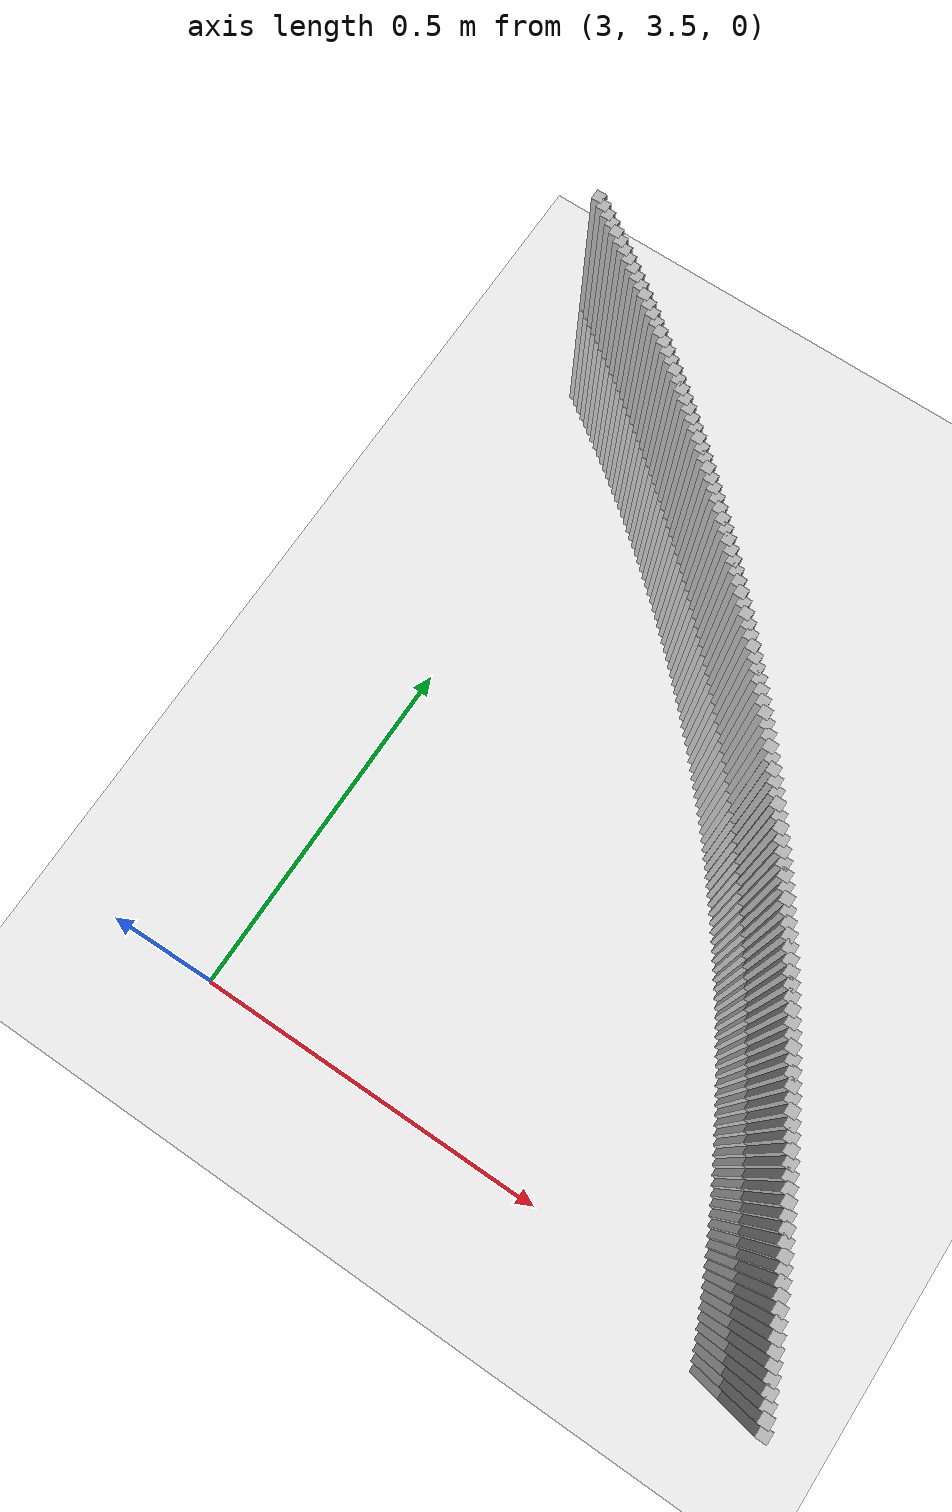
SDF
<sdf version="1.6">
 <world name="base">
  <include><uri>model://sun</uri></include>
  <include><uri>model://ground_plane</uri></include>
  <model name="k404">
   <link name="112_link">
    <collision name="collision_112">
     <pose>2.86540944822022 4.594196036361199 0 0 -0 0</pose>
     <geometry><box><size>0.015 0.015 0.50</size></box></geometry>
    </collision>
    <visual name="visual_112">
     <pose>2.86540944822022 4.594196036361199 0 0 -0 0</pose>
     <geometry><box><size>0.015 0.015 0.50</size></box></geometry>
    </visual>
   </link>
   <link name="113_link">
    <collision name="collision_113">
     <pose>2.8770227397174244 4.586578149579142 0 0 -0 0</pose>
     <geometry><box><size>0.015 0.015 0.50</size></box></geometry>
    </collision>
    <visual name="visual_113">
     <pose>2.8770227397174244 4.586578149579142 0 0 -0 0</pose>
     <geometry><box><size>0.015 0.015 0.50</size></box></geometry>
    </visual>
   </link>
   <link name="114_link">
    <collision name="collision_114">
     <pose>2.888593530622098 4.578895862402553 0 0 -0 0</pose>
     <geometry><box><size>0.015 0.015 0.50</size></box></geometry>
    </collision>
    <visual name="visual_114">
     <pose>2.888593530622098 4.578895862402553 0 0 -0 0</pose>
     <geometry><box><size>0.015 0.015 0.50</size></box></geometry>
    </visual>
   </link>
   <link name="115_link">
    <collision name="collision_115">
     <pose>2.900121463811983 4.571149411938451 0 0 -0 0</pose>
     <geometry><box><size>0.015 0.015 0.50</size></box></geometry>
    </collision>
    <visual name="visual_115">
     <pose>2.900121463811983 4.571149411938451 0 0 -0 0</pose>
     <geometry><box><size>0.015 0.015 0.50</size></box></geometry>
    </visual>
   </link>
   <link name="116_link">
    <collision name="collision_116">
     <pose>2.9116061834875886 4.563339037274195 0 0 -0 0</pose>
     <geometry><box><size>0.015 0.015 0.50</size></box></geometry>
    </collision>
    <visual name="visual_116">
     <pose>2.9116061834875886 4.563339037274195 0 0 -0 0</pose>
     <geometry><box><size>0.015 0.015 0.50</size></box></geometry>
    </visual>
   </link>
   <link name="117_link">
    <collision name="collision_117">
     <pose>2.9230473351831683 4.555464979470116 0 0 -0 0</pose>
     <geometry><box><size>0.015 0.015 0.50</size></box></geometry>
    </collision>
    <visual name="visual_117">
     <pose>2.9230473351831683 4.555464979470116 0 0 -0 0</pose>
     <geometry><box><size>0.015 0.015 0.50</size></box></geometry>
    </visual>
   </link>
   <link name="118_link">
    <collision name="collision_118">
     <pose>2.934444565777665 4.547527481552061 0 0 -0 0</pose>
     <geometry><box><size>0.015 0.015 0.50</size></box></geometry>
    </collision>
    <visual name="visual_118">
     <pose>2.934444565777665 4.547527481552061 0 0 -0 0</pose>
     <geometry><box><size>0.015 0.015 0.50</size></box></geometry>
    </visual>
   </link>
   <link name="119_link">
    <collision name="collision_119">
     <pose>2.9457975235056075 4.539526788503904 0 0 -0 0</pose>
     <geometry><box><size>0.015 0.015 0.50</size></box></geometry>
    </collision>
    <visual name="visual_119">
     <pose>2.9457975235056075 4.539526788503904 0 0 -0 0</pose>
     <geometry><box><size>0.015 0.015 0.50</size></box></geometry>
    </visual>
   </link>
   <link name="120_link">
    <collision name="collision_120">
     <pose>2.9571058579679668 4.5314631472599824 0 0 -0 0</pose>
     <geometry><box><size>0.015 0.015 0.50</size></box></geometry>
    </collision>
    <visual name="visual_120">
     <pose>2.9571058579679668 4.5314631472599824 0 0 -0 0</pose>
     <geometry><box><size>0.015 0.015 0.50</size></box></geometry>
    </visual>
   </link>
   <link name="121_link">
    <collision name="collision_121">
     <pose>2.9683692201429723 4.523336806697472 0 0 -0 0</pose>
     <geometry><box><size>0.015 0.015 0.50</size></box></geometry>
    </collision>
    <visual name="visual_121">
     <pose>2.9683692201429723 4.523336806697472 0 0 -0 0</pose>
     <geometry><box><size>0.015 0.015 0.50</size></box></geometry>
    </visual>
   </link>
   <link name="122_link">
    <collision name="collision_122">
     <pose>2.9795872623968824 4.5151480176287055 0 0 -0 0</pose>
     <geometry><box><size>0.015 0.015 0.50</size></box></geometry>
    </collision>
    <visual name="visual_122">
     <pose>2.9795872623968824 4.5151480176287055 0 0 -0 0</pose>
     <geometry><box><size>0.015 0.015 0.50</size></box></geometry>
    </visual>
   </link>
   <link name="123_link">
    <collision name="collision_123">
     <pose>2.990759638494716 4.506897032793438 0 0 -0 0</pose>
     <geometry><box><size>0.015 0.015 0.50</size></box></geometry>
    </collision>
    <visual name="visual_123">
     <pose>2.990759638494716 4.506897032793438 0 0 -0 0</pose>
     <geometry><box><size>0.015 0.015 0.50</size></box></geometry>
    </visual>
   </link>
   <link name="124_link">
    <collision name="collision_124">
     <pose>3.001886003610937 4.498584106851039 0 0 -0 0</pose>
     <geometry><box><size>0.015 0.015 0.50</size></box></geometry>
    </collision>
    <visual name="visual_124">
     <pose>3.001886003610937 4.498584106851039 0 0 -0 0</pose>
     <geometry><box><size>0.015 0.015 0.50</size></box></geometry>
    </visual>
   </link>
   <link name="125_link">
    <collision name="collision_125">
     <pose>3.012966014340099 4.490209496372639 0 0 -0 0</pose>
     <geometry><box><size>0.015 0.015 0.50</size></box></geometry>
    </collision>
    <visual name="visual_125">
     <pose>3.012966014340099 4.490209496372639 0 0 -0 0</pose>
     <geometry><box><size>0.015 0.015 0.50</size></box></geometry>
    </visual>
   </link>
   <link name="126_link">
    <collision name="collision_126">
     <pose>3.0239993287074407 4.481773459833205 0 0 -0 0</pose>
     <geometry><box><size>0.015 0.015 0.50</size></box></geometry>
    </collision>
    <visual name="visual_126">
     <pose>3.0239993287074407 4.481773459833205 0 0 -0 0</pose>
     <geometry><box><size>0.015 0.015 0.50</size></box></geometry>
    </visual>
   </link>
   <link name="127_link">
    <collision name="collision_127">
     <pose>3.0349856061794434 4.473276257603564 0 0 -0 0</pose>
     <geometry><box><size>0.015 0.015 0.50</size></box></geometry>
    </collision>
    <visual name="visual_127">
     <pose>3.0349856061794434 4.473276257603564 0 0 -0 0</pose>
     <geometry><box><size>0.015 0.015 0.50</size></box></geometry>
    </visual>
   </link>
   <link name="128_link">
    <collision name="collision_128">
     <pose>3.0459245076743424 4.46471815194237 0 0 -0 0</pose>
     <geometry><box><size>0.015 0.015 0.50</size></box></geometry>
    </collision>
    <visual name="visual_128">
     <pose>3.0459245076743424 4.46471815194237 0 0 -0 0</pose>
     <geometry><box><size>0.015 0.015 0.50</size></box></geometry>
    </visual>
   </link>
   <link name="129_link">
    <collision name="collision_129">
     <pose>3.056815695572589 4.456099406988008 0 0 -0 0</pose>
     <geometry><box><size>0.015 0.015 0.50</size></box></geometry>
    </collision>
    <visual name="visual_129">
     <pose>3.056815695572589 4.456099406988008 0 0 -0 0</pose>
     <geometry><box><size>0.015 0.015 0.50</size></box></geometry>
    </visual>
   </link>
   <link name="130_link">
    <collision name="collision_130">
     <pose>3.0676588337272737 4.44742028875044 0 0 -0 0</pose>
     <geometry><box><size>0.015 0.015 0.50</size></box></geometry>
    </collision>
    <visual name="visual_130">
     <pose>3.0676588337272737 4.44742028875044 0 0 -0 0</pose>
     <geometry><box><size>0.015 0.015 0.50</size></box></geometry>
    </visual>
   </link>
   <link name="131_link">
    <collision name="collision_131">
     <pose>3.0784535874744985 4.438681065102996 0 0 -0 0</pose>
     <geometry><box><size>0.015 0.015 0.50</size></box></geometry>
    </collision>
    <visual name="visual_131">
     <pose>3.0784535874744985 4.438681065102996 0 0 -0 0</pose>
     <geometry><box><size>0.015 0.015 0.50</size></box></geometry>
    </visual>
   </link>
   <link name="132_link">
    <collision name="collision_132">
     <pose>3.089199623643709 4.429882005774108 0 0 -0 0</pose>
     <geometry><box><size>0.015 0.015 0.50</size></box></geometry>
    </collision>
    <visual name="visual_132">
     <pose>3.089199623643709 4.429882005774108 0 0 -0 0</pose>
     <geometry><box><size>0.015 0.015 0.50</size></box></geometry>
    </visual>
   </link>
   <link name="133_link">
    <collision name="collision_133">
     <pose>3.099896610567974 4.4210233823389835 0 0 -0 0</pose>
     <geometry><box><size>0.015 0.015 0.50</size></box></geometry>
    </collision>
    <visual name="visual_133">
     <pose>3.099896610567974 4.4210233823389835 0 0 -0 0</pose>
     <geometry><box><size>0.015 0.015 0.50</size></box></geometry>
    </visual>
   </link>
   <link name="134_link">
    <collision name="collision_134">
     <pose>3.1105442180942275 4.412105468211221 0 0 -0 0</pose>
     <geometry><box><size>0.015 0.015 0.50</size></box></geometry>
    </collision>
    <visual name="visual_134">
     <pose>3.1105442180942275 4.412105468211221 0 0 -0 0</pose>
     <geometry><box><size>0.015 0.015 0.50</size></box></geometry>
    </visual>
   </link>
   <link name="135_link">
    <collision name="collision_135">
     <pose>3.1211421175934513 4.403128538634377 0 0 -0 0</pose>
     <geometry><box><size>0.015 0.015 0.50</size></box></geometry>
    </collision>
    <visual name="visual_135">
     <pose>3.1211421175934513 4.403128538634377 0 0 -0 0</pose>
     <geometry><box><size>0.015 0.015 0.50</size></box></geometry>
    </visual>
   </link>
   <link name="136_link">
    <collision name="collision_136">
     <pose>3.1316899819708235 4.394092870673466 0 0 -0 0</pose>
     <geometry><box><size>0.015 0.015 0.50</size></box></geometry>
    </collision>
    <visual name="visual_136">
     <pose>3.1316899819708235 4.394092870673466 0 0 -0 0</pose>
     <geometry><box><size>0.015 0.015 0.50</size></box></geometry>
    </visual>
   </link>
   <link name="137_link">
    <collision name="collision_137">
     <pose>3.142187485675812 4.384998743206413 0 0 -0 0</pose>
     <geometry><box><size>0.015 0.015 0.50</size></box></geometry>
    </collision>
    <visual name="visual_137">
     <pose>3.142187485675812 4.384998743206413 0 0 -0 0</pose>
     <geometry><box><size>0.015 0.015 0.50</size></box></geometry>
    </visual>
   </link>
   <link name="138_link">
    <collision name="collision_138">
     <pose>3.152634304712221 4.37584643691544 0 0 -0 0</pose>
     <geometry><box><size>0.015 0.015 0.50</size></box></geometry>
    </collision>
    <visual name="visual_138">
     <pose>3.152634304712221 4.37584643691544 0 0 -0 0</pose>
     <geometry><box><size>0.015 0.015 0.50</size></box></geometry>
    </visual>
   </link>
   <link name="139_link">
    <collision name="collision_139">
     <pose>3.1630301166481947 4.3666362342784115 0 0 -0 0</pose>
     <geometry><box><size>0.015 0.015 0.50</size></box></geometry>
    </collision>
    <visual name="visual_139">
     <pose>3.1630301166481947 4.3666362342784115 0 0 -0 0</pose>
     <geometry><box><size>0.015 0.015 0.50</size></box></geometry>
    </visual>
   </link>
   <link name="140_link">
    <collision name="collision_140">
     <pose>3.1733746006261656 4.35736841956011 0 0 -0 0</pose>
     <geometry><box><size>0.015 0.015 0.50</size></box></geometry>
    </collision>
    <visual name="visual_140">
     <pose>3.1733746006261656 4.35736841956011 0 0 -0 0</pose>
     <geometry><box><size>0.015 0.015 0.50</size></box></geometry>
    </visual>
   </link>
   <link name="141_link">
    <collision name="collision_141">
     <pose>3.1836674373727565 4.348043278803463 0 0 -0 0</pose>
     <geometry><box><size>0.015 0.015 0.50</size></box></geometry>
    </collision>
    <visual name="visual_141">
     <pose>3.1836674373727565 4.348043278803463 0 0 -0 0</pose>
     <geometry><box><size>0.015 0.015 0.50</size></box></geometry>
    </visual>
   </link>
   <link name="142_link">
    <collision name="collision_142">
     <pose>3.1939083092086396 4.338661099820717 0 0 -0 0</pose>
     <geometry><box><size>0.015 0.015 0.50</size></box></geometry>
    </collision>
    <visual name="visual_142">
     <pose>3.1939083092086396 4.338661099820717 0 0 -0 0</pose>
     <geometry><box><size>0.015 0.015 0.50</size></box></geometry>
    </visual>
   </link>
   <link name="143_link">
    <collision name="collision_143">
     <pose>3.2040969000583353 4.3292221721845525 0 0 -0 0</pose>
     <geometry><box><size>0.015 0.015 0.50</size></box></geometry>
    </collision>
    <visual name="visual_143">
     <pose>3.2040969000583353 4.3292221721845525 0 0 -0 0</pose>
     <geometry><box><size>0.015 0.015 0.50</size></box></geometry>
    </visual>
   </link>
   <link name="144_link">
    <collision name="collision_144">
     <pose>3.214232895459973 4.319726787219147 0 0 -0 0</pose>
     <geometry><box><size>0.015 0.015 0.50</size></box></geometry>
    </collision>
    <visual name="visual_144">
     <pose>3.214232895459973 4.319726787219147 0 0 -0 0</pose>
     <geometry><box><size>0.015 0.015 0.50</size></box></geometry>
    </visual>
   </link>
   <link name="145_link">
    <collision name="collision_145">
     <pose>3.224315982574992 4.310175237991184 0 0 -0 0</pose>
     <geometry><box><size>0.015 0.015 0.50</size></box></geometry>
    </collision>
    <visual name="visual_145">
     <pose>3.224315982574992 4.310175237991184 0 0 -0 0</pose>
     <geometry><box><size>0.015 0.015 0.50</size></box></geometry>
    </visual>
   </link>
   <link name="146_link">
    <collision name="collision_146">
     <pose>3.234345850197801 4.300567819300808 0 0 -0 0</pose>
     <geometry><box><size>0.015 0.015 0.50</size></box></geometry>
    </collision>
    <visual name="visual_146">
     <pose>3.234345850197801 4.300567819300808 0 0 -0 0</pose>
     <geometry><box><size>0.015 0.015 0.50</size></box></geometry>
    </visual>
   </link>
   <link name="147_link">
    <collision name="collision_147">
     <pose>3.2443221887653806 4.290904827672524 0 0 -0 0</pose>
     <geometry><box><size>0.015 0.015 0.50</size></box></geometry>
    </collision>
    <visual name="visual_147">
     <pose>3.2443221887653806 4.290904827672524 0 0 -0 0</pose>
     <geometry><box><size>0.015 0.015 0.50</size></box></geometry>
    </visual>
   </link>
   <link name="148_link">
    <collision name="collision_148">
     <pose>3.2542446903668383 4.281186561346047 0 0 -0 0</pose>
     <geometry><box><size>0.015 0.015 0.50</size></box></geometry>
    </collision>
    <visual name="visual_148">
     <pose>3.2542446903668383 4.281186561346047 0 0 -0 0</pose>
     <geometry><box><size>0.015 0.015 0.50</size></box></geometry>
    </visual>
   </link>
   <link name="149_link">
    <collision name="collision_149">
     <pose>3.2641130487529124 4.271413320267098 0 0 -0 0</pose>
     <geometry><box><size>0.015 0.015 0.50</size></box></geometry>
    </collision>
    <visual name="visual_149">
     <pose>3.2641130487529124 4.271413320267098 0 0 -0 0</pose>
     <geometry><box><size>0.015 0.015 0.50</size></box></geometry>
    </visual>
   </link>
   <link name="150_link">
    <collision name="collision_150">
     <pose>3.273926959345424 4.261585406078144 0 0 -0 0</pose>
     <geometry><box><size>0.015 0.015 0.50</size></box></geometry>
    </collision>
    <visual name="visual_150">
     <pose>3.273926959345424 4.261585406078144 0 0 -0 0</pose>
     <geometry><box><size>0.015 0.015 0.50</size></box></geometry>
    </visual>
   </link>
   <link name="151_link">
    <collision name="collision_151">
     <pose>3.283686119246677 4.251703122109089 0 0 -0 0</pose>
     <geometry><box><size>0.015 0.015 0.50</size></box></geometry>
    </collision>
    <visual name="visual_151">
     <pose>3.283686119246677 4.251703122109089 0 0 -0 0</pose>
     <geometry><box><size>0.015 0.015 0.50</size></box></geometry>
    </visual>
   </link>
   <link name="152_link">
    <collision name="collision_152">
     <pose>3.293390227248807 4.241766773367914 0 0 -0 0</pose>
     <geometry><box><size>0.015 0.015 0.50</size></box></geometry>
    </collision>
    <visual name="visual_152">
     <pose>3.293390227248807 4.241766773367914 0 0 -0 0</pose>
     <geometry><box><size>0.015 0.015 0.50</size></box></geometry>
    </visual>
   </link>
   <link name="153_link">
    <collision name="collision_153">
     <pose>3.303038983843078 4.2317766665312595 0 0 -0 0</pose>
     <geometry><box><size>0.015 0.015 0.50</size></box></geometry>
    </collision>
    <visual name="visual_153">
     <pose>3.303038983843078 4.2317766665312595 0 0 -0 0</pose>
     <geometry><box><size>0.015 0.015 0.50</size></box></geometry>
    </visual>
   </link>
   <link name="154_link">
    <collision name="collision_154">
     <pose>3.312632091229127 4.221733109934964 0 0 -0 0</pose>
     <geometry><box><size>0.015 0.015 0.50</size></box></geometry>
    </collision>
    <visual name="visual_154">
     <pose>3.312632091229127 4.221733109934964 0 0 -0 0</pose>
     <geometry><box><size>0.015 0.015 0.50</size></box></geometry>
    </visual>
   </link>
   <link name="155_link">
    <collision name="collision_155">
     <pose>3.3221692533241542 4.211636413564544 0 0 -0 0</pose>
     <geometry><box><size>0.015 0.015 0.50</size></box></geometry>
    </collision>
    <visual name="visual_155">
     <pose>3.3221692533241542 4.211636413564544 0 0 -0 0</pose>
     <geometry><box><size>0.015 0.015 0.50</size></box></geometry>
    </visual>
   </link>
   <link name="156_link">
    <collision name="collision_156">
     <pose>3.3316501757720616 4.20148688904563 0 0 -0 0</pose>
     <geometry><box><size>0.015 0.015 0.50</size></box></geometry>
    </collision>
    <visual name="visual_156">
     <pose>3.3316501757720616 4.20148688904563 0 0 -0 0</pose>
     <geometry><box><size>0.015 0.015 0.50</size></box></geometry>
    </visual>
   </link>
   <link name="157_link">
    <collision name="collision_157">
     <pose>3.341074565952538 4.191284849634346 0 0 -0 0</pose>
     <geometry><box><size>0.015 0.015 0.50</size></box></geometry>
    </collision>
    <visual name="visual_157">
     <pose>3.341074565952538 4.191284849634346 0 0 -0 0</pose>
     <geometry><box><size>0.015 0.015 0.50</size></box></geometry>
    </visual>
   </link>
   <link name="158_link">
    <collision name="collision_158">
     <pose>3.350442132990093 4.1810306102076416 0 0 -0 0</pose>
     <geometry><box><size>0.015 0.015 0.50</size></box></geometry>
    </collision>
    <visual name="visual_158">
     <pose>3.350442132990093 4.1810306102076416 0 0 -0 0</pose>
     <geometry><box><size>0.015 0.015 0.50</size></box></geometry>
    </visual>
   </link>
   <link name="159_link">
    <collision name="collision_159">
     <pose>3.359752587763029 4.170724487253574 0 0 -0 0</pose>
     <geometry><box><size>0.015 0.015 0.50</size></box></geometry>
    </collision>
    <visual name="visual_159">
     <pose>3.359752587763029 4.170724487253574 0 0 -0 0</pose>
     <geometry><box><size>0.015 0.015 0.50</size></box></geometry>
    </visual>
   </link>
   <link name="160_link">
    <collision name="collision_160">
     <pose>3.369005642912371 4.1603667988615385 0 0 -0 0</pose>
     <geometry><box><size>0.015 0.015 0.50</size></box></geometry>
    </collision>
    <visual name="visual_160">
     <pose>3.369005642912371 4.1603667988615385 0 0 -0 0</pose>
     <geometry><box><size>0.015 0.015 0.50</size></box></geometry>
    </visual>
   </link>
   <link name="161_link">
    <collision name="collision_161">
     <pose>3.378201012850732 4.149957864712455 0 0 -0 0</pose>
     <geometry><box><size>0.015 0.015 0.50</size></box></geometry>
    </collision>
    <visual name="visual_161">
     <pose>3.378201012850732 4.149957864712455 0 0 -0 0</pose>
     <geometry><box><size>0.015 0.015 0.50</size></box></geometry>
    </visual>
   </link>
   <link name="162_link">
    <collision name="collision_162">
     <pose>3.3873384137711264 4.139498006068897 0 0 -0 0</pose>
     <geometry><box><size>0.015 0.015 0.50</size></box></geometry>
    </collision>
    <visual name="visual_162">
     <pose>3.3873384137711264 4.139498006068897 0 0 -0 0</pose>
     <geometry><box><size>0.015 0.015 0.50</size></box></geometry>
    </visual>
   </link>
   <link name="163_link">
    <collision name="collision_163">
     <pose>3.396417563655734 4.128987545765176 0 0 -0 0</pose>
     <geometry><box><size>0.015 0.015 0.50</size></box></geometry>
    </collision>
    <visual name="visual_163">
     <pose>3.396417563655734 4.128987545765176 0 0 -0 0</pose>
     <geometry><box><size>0.015 0.015 0.50</size></box></geometry>
    </visual>
   </link>
   <link name="164_link">
    <collision name="collision_164">
     <pose>3.405438182284599 4.1184268081973805 0 0 -0 0</pose>
     <geometry><box><size>0.015 0.015 0.50</size></box></geometry>
    </collision>
    <visual name="visual_164">
     <pose>3.405438182284599 4.1184268081973805 0 0 -0 0</pose>
     <geometry><box><size>0.015 0.015 0.50</size></box></geometry>
    </visual>
   </link>
   <link name="165_link">
    <collision name="collision_165">
     <pose>3.4143999912442835 4.107816119313364 0 0 -0 0</pose>
     <geometry><box><size>0.015 0.015 0.50</size></box></geometry>
    </collision>
    <visual name="visual_165">
     <pose>3.4143999912442835 4.107816119313364 0 0 -0 0</pose>
     <geometry><box><size>0.015 0.015 0.50</size></box></geometry>
    </visual>
   </link>
   <link name="166_link">
    <collision name="collision_166">
     <pose>3.4233027139364554 4.097155806602682 0 0 -0 0</pose>
     <geometry><box><size>0.015 0.015 0.50</size></box></geometry>
    </collision>
    <visual name="visual_166">
     <pose>3.4233027139364554 4.097155806602682 0 0 -0 0</pose>
     <geometry><box><size>0.015 0.015 0.50</size></box></geometry>
    </visual>
   </link>
   <link name="167_link">
    <collision name="collision_167">
     <pose>3.4321460755864313 4.086446199086485 0 0 -0 0</pose>
     <geometry><box><size>0.015 0.015 0.50</size></box></geometry>
    </collision>
    <visual name="visual_167">
     <pose>3.4321460755864313 4.086446199086485 0 0 -0 0</pose>
     <geometry><box><size>0.015 0.015 0.50</size></box></geometry>
    </visual>
   </link>
   <link name="168_link">
    <collision name="collision_168">
     <pose>3.440929803251651 4.075687627307363 0 0 -0 0</pose>
     <geometry><box><size>0.015 0.015 0.50</size></box></geometry>
    </collision>
    <visual name="visual_168">
     <pose>3.440929803251651 4.075687627307363 0 0 -0 0</pose>
     <geometry><box><size>0.015 0.015 0.50</size></box></geometry>
    </visual>
   </link>
   <link name="169_link">
    <collision name="collision_169">
     <pose>3.4496536258301074 4.064880423319148 0 0 -0 0</pose>
     <geometry><box><size>0.015 0.015 0.50</size></box></geometry>
    </collision>
    <visual name="visual_169">
     <pose>3.4496536258301074 4.064880423319148 0 0 -0 0</pose>
     <geometry><box><size>0.015 0.015 0.50</size></box></geometry>
    </visual>
   </link>
   <link name="170_link">
    <collision name="collision_170">
     <pose>3.4583172740687083 4.054024920676661 0 0 -0 0</pose>
     <geometry><box><size>0.015 0.015 0.50</size></box></geometry>
    </collision>
    <visual name="visual_170">
     <pose>3.4583172740687083 4.054024920676661 0 0 -0 0</pose>
     <geometry><box><size>0.015 0.015 0.50</size></box></geometry>
    </visual>
   </link>
   <link name="171_link">
    <collision name="collision_171">
     <pose>3.4669204805715923 4.0431214544254175 0 0 -0 0</pose>
     <geometry><box><size>0.015 0.015 0.50</size></box></geometry>
    </collision>
    <visual name="visual_171">
     <pose>3.4669204805715923 4.0431214544254175 0 0 -0 0</pose>
     <geometry><box><size>0.015 0.015 0.50</size></box></geometry>
    </visual>
   </link>
   <link name="172_link">
    <collision name="collision_172">
     <pose>3.475462979808376 4.032170361091289 0 0 -0 0</pose>
     <geometry><box><size>0.015 0.015 0.50</size></box></geometry>
    </collision>
    <visual name="visual_172">
     <pose>3.475462979808376 4.032170361091289 0 0 -0 0</pose>
     <geometry><box><size>0.015 0.015 0.50</size></box></geometry>
    </visual>
   </link>
   <link name="173_link">
    <collision name="collision_173">
     <pose>3.483944508122355 4.021171978670113 0 0 -0 0</pose>
     <geometry><box><size>0.015 0.015 0.50</size></box></geometry>
    </collision>
    <visual name="visual_173">
     <pose>3.483944508122355 4.021171978670113 0 0 -0 0</pose>
     <geometry><box><size>0.015 0.015 0.50</size></box></geometry>
    </visual>
   </link>
   <link name="174_link">
    <collision name="collision_174">
     <pose>3.492364803738637 4.010126646617264 0 0 -0 0</pose>
     <geometry><box><size>0.015 0.015 0.50</size></box></geometry>
    </collision>
    <visual name="visual_174">
     <pose>3.492364803738637 4.010126646617264 0 0 -0 0</pose>
     <geometry><box><size>0.015 0.015 0.50</size></box></geometry>
    </visual>
   </link>
   <link name="175_link">
    <collision name="collision_175">
     <pose>3.5007236067722225 3.999034705837176 0 0 -0 0</pose>
     <geometry><box><size>0.015 0.015 0.50</size></box></geometry>
    </collision>
    <visual name="visual_175">
     <pose>3.5007236067722225 3.999034705837176 0 0 -0 0</pose>
     <geometry><box><size>0.015 0.015 0.50</size></box></geometry>
    </visual>
   </link>
   <link name="176_link">
    <collision name="collision_176">
     <pose>3.509020659236028 3.9878964986728196 0 0 -0 0</pose>
     <geometry><box><size>0.015 0.015 0.50</size></box></geometry>
    </collision>
    <visual name="visual_176">
     <pose>3.509020659236028 3.9878964986728196 0 0 -0 0</pose>
     <geometry><box><size>0.015 0.015 0.50</size></box></geometry>
    </visual>
   </link>
   <link name="177_link">
    <collision name="collision_177">
     <pose>3.5172557050488455 3.9767123688951367 0 0 -0 0</pose>
     <geometry><box><size>0.015 0.015 0.50</size></box></geometry>
    </collision>
    <visual name="visual_177">
     <pose>3.5172557050488455 3.9767123688951367 0 0 -0 0</pose>
     <geometry><box><size>0.015 0.015 0.50</size></box></geometry>
    </visual>
   </link>
   <link name="178_link">
    <collision name="collision_178">
     <pose>3.525428490043248 3.9654826616924295 0 0 -0 0</pose>
     <geometry><box><size>0.015 0.015 0.50</size></box></geometry>
    </collision>
    <visual name="visual_178">
     <pose>3.525428490043248 3.9654826616924295 0 0 -0 0</pose>
     <geometry><box><size>0.015 0.015 0.50</size></box></geometry>
    </visual>
   </link>
   <link name="179_link">
    <collision name="collision_179">
     <pose>3.533538761973434 3.954207723659709 0 0 -0 0</pose>
     <geometry><box><size>0.015 0.015 0.50</size></box></geometry>
    </collision>
    <visual name="visual_179">
     <pose>3.533538761973434 3.954207723659709 0 0 -0 0</pose>
     <geometry><box><size>0.015 0.015 0.50</size></box></geometry>
    </visual>
   </link>
   <link name="180_link">
    <collision name="collision_180">
     <pose>3.541586270523013 3.9428879027879935 0 0 -0 0</pose>
     <geometry><box><size>0.015 0.015 0.50</size></box></geometry>
    </collision>
    <visual name="visual_180">
     <pose>3.541586270523013 3.9428879027879935 0 0 -0 0</pose>
     <geometry><box><size>0.015 0.015 0.50</size></box></geometry>
    </visual>
   </link>
   <link name="181_link">
    <collision name="collision_181">
     <pose>3.54957076731273 3.9315235484535727 0 0 -0 0</pose>
     <geometry><box><size>0.015 0.015 0.50</size></box></geometry>
    </collision>
    <visual name="visual_181">
     <pose>3.54957076731273 3.9315235484535727 0 0 -0 0</pose>
     <geometry><box><size>0.015 0.015 0.50</size></box></geometry>
    </visual>
   </link>
   <link name="182_link">
    <collision name="collision_182">
     <pose>3.5574920059081316 3.9201150114072214 0 0 -0 0</pose>
     <geometry><box><size>0.015 0.015 0.50</size></box></geometry>
    </collision>
    <visual name="visual_182">
     <pose>3.5574920059081316 3.9201150114072214 0 0 -0 0</pose>
     <geometry><box><size>0.015 0.015 0.50</size></box></geometry>
    </visual>
   </link>
   <link name="183_link">
    <collision name="collision_183">
     <pose>3.5653497418271756 3.9086626437633747 0 0 -0 0</pose>
     <geometry><box><size>0.015 0.015 0.50</size></box></geometry>
    </collision>
    <visual name="visual_183">
     <pose>3.5653497418271756 3.9086626437633747 0 0 -0 0</pose>
     <geometry><box><size>0.015 0.015 0.50</size></box></geometry>
    </visual>
   </link>
   <link name="184_link">
    <collision name="collision_184">
     <pose>3.5731437325477713 3.89716679898926 0 0 -0 0</pose>
     <geometry><box><size>0.015 0.015 0.50</size></box></geometry>
    </collision>
    <visual name="visual_184">
     <pose>3.5731437325477713 3.89716679898926 0 0 -0 0</pose>
     <geometry><box><size>0.015 0.015 0.50</size></box></geometry>
    </visual>
   </link>
   <link name="185_link">
    <collision name="collision_185">
     <pose>3.580873737515268 3.8856278318939896 0 0 -0 0</pose>
     <geometry><box><size>0.015 0.015 0.50</size></box></geometry>
    </collision>
    <visual name="visual_185">
     <pose>3.580873737515268 3.8856278318939896 0 0 -0 0</pose>
     <geometry><box><size>0.015 0.015 0.50</size></box></geometry>
    </visual>
   </link>
   <link name="186_link">
    <collision name="collision_186">
     <pose>3.5885395181498803 3.8740460986176073 0 0 -0 0</pose>
     <geometry><box><size>0.015 0.015 0.50</size></box></geometry>
    </collision>
    <visual name="visual_186">
     <pose>3.5885395181498803 3.8740460986176073 0 0 -0 0</pose>
     <geometry><box><size>0.015 0.015 0.50</size></box></geometry>
    </visual>
   </link>
   <link name="187_link">
    <collision name="collision_187">
     <pose>3.5961408378540476 3.8624219566200964 0 0 -0 0</pose>
     <geometry><box><size>0.015 0.015 0.50</size></box></geometry>
    </collision>
    <visual name="visual_187">
     <pose>3.5961408378540476 3.8624219566200964 0 0 -0 0</pose>
     <geometry><box><size>0.015 0.015 0.50</size></box></geometry>
    </visual>
   </link>
   <link name="188_link">
    <collision name="collision_188">
     <pose>3.6036774620197414 3.8507557646703496 0 0 -0 0</pose>
     <geometry><box><size>0.015 0.015 0.50</size></box></geometry>
    </collision>
    <visual name="visual_188">
     <pose>3.6036774620197414 3.8507557646703496 0 0 -0 0</pose>
     <geometry><box><size>0.015 0.015 0.50</size></box></geometry>
    </visual>
   </link>
   <link name="189_link">
    <collision name="collision_189">
     <pose>3.6111491580357025 3.839047882835093 0 0 -0 0</pose>
     <geometry><box><size>0.015 0.015 0.50</size></box></geometry>
    </collision>
    <visual name="visual_189">
     <pose>3.6111491580357025 3.839047882835093 0 0 -0 0</pose>
     <geometry><box><size>0.015 0.015 0.50</size></box></geometry>
    </visual>
   </link>
   <link name="190_link">
    <collision name="collision_190">
     <pose>3.6185556952946225 3.827298672467775 0 0 -0 0</pose>
     <geometry><box><size>0.015 0.015 0.50</size></box></geometry>
    </collision>
    <visual name="visual_190">
     <pose>3.6185556952946225 3.827298672467775 0 0 -0 0</pose>
     <geometry><box><size>0.015 0.015 0.50</size></box></geometry>
    </visual>
   </link>
   <link name="191_link">
    <collision name="collision_191">
     <pose>3.625896845200261 3.815508496197413 0 0 -0 0</pose>
     <geometry><box><size>0.015 0.015 0.50</size></box></geometry>
    </collision>
    <visual name="visual_191">
     <pose>3.625896845200261 3.815508496197413 0 0 -0 0</pose>
     <geometry><box><size>0.015 0.015 0.50</size></box></geometry>
    </visual>
   </link>
   <link name="192_link">
    <collision name="collision_192">
     <pose>3.6331723811744987 3.8036777179173997 0 0 -0 0</pose>
     <geometry><box><size>0.015 0.015 0.50</size></box></geometry>
    </collision>
    <visual name="visual_192">
     <pose>3.6331723811744987 3.8036777179173997 0 0 -0 0</pose>
     <geometry><box><size>0.015 0.015 0.50</size></box></geometry>
    </visual>
   </link>
   <link name="193_link">
    <collision name="collision_193">
     <pose>3.6403820786643344 3.7918067027742746 0 0 -0 0</pose>
     <geometry><box><size>0.015 0.015 0.50</size></box></geometry>
    </collision>
    <visual name="visual_193">
     <pose>3.6403820786643344 3.7918067027742746 0 0 -0 0</pose>
     <geometry><box><size>0.015 0.015 0.50</size></box></geometry>
    </visual>
   </link>
   <link name="194_link">
    <collision name="collision_194">
     <pose>3.647525715148814 3.77989581715645 0 0 -0 0</pose>
     <geometry><box><size>0.015 0.015 0.50</size></box></geometry>
    </collision>
    <visual name="visual_194">
     <pose>3.647525715148814 3.77989581715645 0 0 -0 0</pose>
     <geometry><box><size>0.015 0.015 0.50</size></box></geometry>
    </visual>
   </link>
   <link name="195_link">
    <collision name="collision_195">
     <pose>3.6546030701458947 3.767945428682909 0 0 -0 0</pose>
     <geometry><box><size>0.015 0.015 0.50</size></box></geometry>
    </collision>
    <visual name="visual_195">
     <pose>3.6546030701458947 3.767945428682909 0 0 -0 0</pose>
     <geometry><box><size>0.015 0.015 0.50</size></box></geometry>
    </visual>
   </link>
   <link name="196_link">
    <collision name="collision_196">
     <pose>3.661613925219257 3.7559559061918515 0 0 -0 0</pose>
     <geometry><box><size>0.015 0.015 0.50</size></box></geometry>
    </collision>
    <visual name="visual_196">
     <pose>3.661613925219257 3.7559559061918515 0 0 -0 0</pose>
     <geometry><box><size>0.015 0.015 0.50</size></box></geometry>
    </visual>
   </link>
   <link name="197_link">
    <collision name="collision_197">
     <pose>3.6685580639850426 3.7439276197293174 0 0 -0 0</pose>
     <geometry><box><size>0.015 0.015 0.50</size></box></geometry>
    </collision>
    <visual name="visual_197">
     <pose>3.6685580639850426 3.7439276197293174 0 0 -0 0</pose>
     <geometry><box><size>0.015 0.015 0.50</size></box></geometry>
    </visual>
   </link>
   <link name="198_link">
    <collision name="collision_198">
     <pose>3.67543527211853 3.7318609405377607 0 0 -0 0</pose>
     <geometry><box><size>0.015 0.015 0.50</size></box></geometry>
    </collision>
    <visual name="visual_198">
     <pose>3.67543527211853 3.7318609405377607 0 0 -0 0</pose>
     <geometry><box><size>0.015 0.015 0.50</size></box></geometry>
    </visual>
   </link>
   <link name="199_link">
    <collision name="collision_199">
     <pose>3.6822453373607567 3.7197562410445935 0 0 -0 0</pose>
     <geometry><box><size>0.015 0.015 0.50</size></box></geometry>
    </collision>
    <visual name="visual_199">
     <pose>3.6822453373607567 3.7197562410445935 0 0 -0 0</pose>
     <geometry><box><size>0.015 0.015 0.50</size></box></geometry>
    </visual>
   </link>
   <link name="200_link">
    <collision name="collision_200">
     <pose>3.6889880495250638 3.7076138948506916 0 0 -0 0</pose>
     <geometry><box><size>0.015 0.015 0.50</size></box></geometry>
    </collision>
    <visual name="visual_200">
     <pose>3.6889880495250638 3.7076138948506916 0 0 -0 0</pose>
     <geometry><box><size>0.015 0.015 0.50</size></box></geometry>
    </visual>
   </link>
   <link name="201_link">
    <collision name="collision_201">
     <pose>3.6956632005035863 3.695434276718862 0 0 -0 0</pose>
     <geometry><box><size>0.015 0.015 0.50</size></box></geometry>
    </collision>
    <visual name="visual_201">
     <pose>3.6956632005035863 3.695434276718862 0 0 -0 0</pose>
     <geometry><box><size>0.015 0.015 0.50</size></box></geometry>
    </visual>
   </link>
   <link name="202_link">
    <collision name="collision_202">
     <pose>3.7022705842736756 3.683217762562278 0 0 -0 0</pose>
     <geometry><box><size>0.015 0.015 0.50</size></box></geometry>
    </collision>
    <visual name="visual_202">
     <pose>3.7022705842736756 3.683217762562278 0 0 -0 0</pose>
     <geometry><box><size>0.015 0.015 0.50</size></box></geometry>
    </visual>
   </link>
   <link name="203_link">
    <collision name="collision_203">
     <pose>3.7088099969042587 3.670964729432876 0 0 -0 0</pose>
     <geometry><box><size>0.015 0.015 0.50</size></box></geometry>
    </collision>
    <visual name="visual_203">
     <pose>3.7088099969042587 3.670964729432876 0 0 -0 0</pose>
     <geometry><box><size>0.015 0.015 0.50</size></box></geometry>
    </visual>
   </link>
   <link name="204_link">
    <collision name="collision_204">
     <pose>3.7152812365621317 3.658675555509718 0 0 -0 0</pose>
     <geometry><box><size>0.015 0.015 0.50</size></box></geometry>
    </collision>
    <visual name="visual_204">
     <pose>3.7152812365621317 3.658675555509718 0 0 -0 0</pose>
     <geometry><box><size>0.015 0.015 0.50</size></box></geometry>
    </visual>
   </link>
   <link name="205_link">
    <collision name="collision_205">
     <pose>3.7216841035181893 3.646350620087319 0 0 -0 0</pose>
     <geometry><box><size>0.015 0.015 0.50</size></box></geometry>
    </collision>
    <visual name="visual_205">
     <pose>3.7216841035181893 3.646350620087319 0 0 -0 0</pose>
     <geometry><box><size>0.015 0.015 0.50</size></box></geometry>
    </visual>
   </link>
   <link name="206_link">
    <collision name="collision_206">
     <pose>3.7280184001535885 3.6339903035639436 0 0 -0 0</pose>
     <geometry><box><size>0.015 0.015 0.50</size></box></geometry>
    </collision>
    <visual name="visual_206">
     <pose>3.7280184001535885 3.6339903035639436 0 0 -0 0</pose>
     <geometry><box><size>0.015 0.015 0.50</size></box></geometry>
    </visual>
   </link>
   <link name="207_link">
    <collision name="collision_207">
     <pose>3.73428393096585 3.62159498742986 0 0 -0 0</pose>
     <geometry><box><size>0.015 0.015 0.50</size></box></geometry>
    </collision>
    <visual name="visual_207">
     <pose>3.73428393096585 3.62159498742986 0 0 -0 0</pose>
     <geometry><box><size>0.015 0.015 0.50</size></box></geometry>
    </visual>
   </link>
   <link name="208_link">
    <collision name="collision_208">
     <pose>3.740480502574891 3.6091650542555715 0 0 -0 0</pose>
     <geometry><box><size>0.015 0.015 0.50</size></box></geometry>
    </collision>
    <visual name="visual_208">
     <pose>3.740480502574891 3.6091650542555715 0 0 -0 0</pose>
     <geometry><box><size>0.015 0.015 0.50</size></box></geometry>
    </visual>
   </link>
   <link name="209_link">
    <collision name="collision_209">
     <pose>3.746607923728993 3.5967008876800026 0 0 -0 0</pose>
     <geometry><box><size>0.015 0.015 0.50</size></box></geometry>
    </collision>
    <visual name="visual_209">
     <pose>3.746607923728993 3.5967008876800026 0 0 -0 0</pose>
     <geometry><box><size>0.015 0.015 0.50</size></box></geometry>
    </visual>
   </link>
   <link name="210_link">
    <collision name="collision_210">
     <pose>3.7526660053107044 3.5842028723986634 0 0 -0 0</pose>
     <geometry><box><size>0.015 0.015 0.50</size></box></geometry>
    </collision>
    <visual name="visual_210">
     <pose>3.7526660053107044 3.5842028723986634 0 0 -0 0</pose>
     <geometry><box><size>0.015 0.015 0.50</size></box></geometry>
    </visual>
   </link>
   <link name="211_link">
    <collision name="collision_211">
     <pose>3.7586545603426815 3.5716713941517746 0 0 -0 0</pose>
     <geometry><box><size>0.015 0.015 0.50</size></box></geometry>
    </collision>
    <visual name="visual_211">
     <pose>3.7586545603426815 3.5716713941517746 0 0 -0 0</pose>
     <geometry><box><size>0.015 0.015 0.50</size></box></geometry>
    </visual>
   </link>
   <link name="212_link">
    <collision name="collision_212">
     <pose>3.764573403993453 3.5591068397123613 0 0 -0 0</pose>
     <geometry><box><size>0.015 0.015 0.50</size></box></geometry>
    </collision>
    <visual name="visual_212">
     <pose>3.764573403993453 3.5591068397123613 0 0 -0 0</pose>
     <geometry><box><size>0.015 0.015 0.50</size></box></geometry>
    </visual>
   </link>
   <link name="213_link">
    <collision name="collision_213">
     <pose>3.7704223535831294 3.546509596874316 0 0 -0 0</pose>
     <geometry><box><size>0.015 0.015 0.50</size></box></geometry>
    </collision>
    <visual name="visual_213">
     <pose>3.7704223535831294 3.546509596874316 0 0 -0 0</pose>
     <geometry><box><size>0.015 0.015 0.50</size></box></geometry>
    </visual>
   </link>
   <link name="214_link">
    <collision name="collision_214">
     <pose>3.7762012285890396 3.53388005444043 0 0 -0 0</pose>
     <geometry><box><size>0.015 0.015 0.50</size></box></geometry>
    </collision>
    <visual name="visual_214">
     <pose>3.7762012285890396 3.53388005444043 0 0 -0 0</pose>
     <geometry><box><size>0.015 0.015 0.50</size></box></geometry>
    </visual>
   </link>
   <link name="215_link">
    <collision name="collision_215">
     <pose>3.7819098506513025 3.5212186022103937 0 0 -0 0</pose>
     <geometry><box><size>0.015 0.015 0.50</size></box></geometry>
    </collision>
    <visual name="visual_215">
     <pose>3.7819098506513025 3.5212186022103937 0 0 -0 0</pose>
     <geometry><box><size>0.015 0.015 0.50</size></box></geometry>
    </visual>
   </link>
   <link name="216_link">
    <collision name="collision_216">
     <pose>3.7875480435783326 3.5085256309687636 0 0 -0 0</pose>
     <geometry><box><size>0.015 0.015 0.50</size></box></geometry>
    </collision>
    <visual name="visual_216">
     <pose>3.7875480435783326 3.5085256309687636 0 0 -0 0</pose>
     <geometry><box><size>0.015 0.015 0.50</size></box></geometry>
    </visual>
   </link>
   <link name="217_link">
    <collision name="collision_217">
     <pose>3.7931156333522775 3.4958015324729037 0 0 -0 0</pose>
     <geometry><box><size>0.015 0.015 0.50</size></box></geometry>
    </collision>
    <visual name="visual_217">
     <pose>3.7931156333522775 3.4958015324729037 0 0 -0 0</pose>
     <geometry><box><size>0.015 0.015 0.50</size></box></geometry>
    </visual>
   </link>
   <link name="218_link">
    <collision name="collision_218">
     <pose>3.7986124481343877 3.4830466994408944 0 0 -0 0</pose>
     <geometry><box><size>0.015 0.015 0.50</size></box></geometry>
    </collision>
    <visual name="visual_218">
     <pose>3.7986124481343877 3.4830466994408944 0 0 -0 0</pose>
     <geometry><box><size>0.015 0.015 0.50</size></box></geometry>
    </visual>
   </link>
   <link name="219_link">
    <collision name="collision_219">
     <pose>3.8040383182703232 3.470261525539409 0 0 -0 0</pose>
     <geometry><box><size>0.015 0.015 0.50</size></box></geometry>
    </collision>
    <visual name="visual_219">
     <pose>3.8040383182703232 3.470261525539409 0 0 -0 0</pose>
     <geometry><box><size>0.015 0.015 0.50</size></box></geometry>
    </visual>
   </link>
   <link name="220_link">
    <collision name="collision_220">
     <pose>3.8093930762953865 3.457446405371565 0 0 -0 0</pose>
     <geometry><box><size>0.015 0.015 0.50</size></box></geometry>
    </collision>
    <visual name="visual_220">
     <pose>3.8093930762953865 3.457446405371565 0 0 -0 0</pose>
     <geometry><box><size>0.015 0.015 0.50</size></box></geometry>
    </visual>
   </link>
   <link name="221_link">
    <collision name="collision_221">
     <pose>3.8146765569396934 3.4446017344647455 0 0 -0 0</pose>
     <geometry><box><size>0.015 0.015 0.50</size></box></geometry>
    </collision>
    <visual name="visual_221">
     <pose>3.8146765569396934 3.4446017344647455 0 0 -0 0</pose>
     <geometry><box><size>0.015 0.015 0.50</size></box></geometry>
    </visual>
   </link>
   <static>true</static>
  </model>
 </world>
</sdf>
